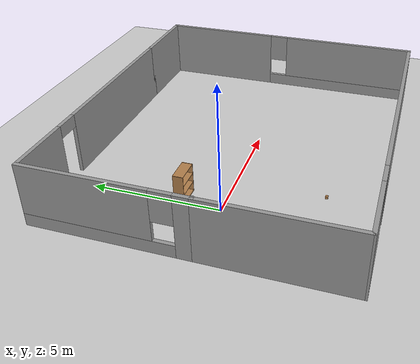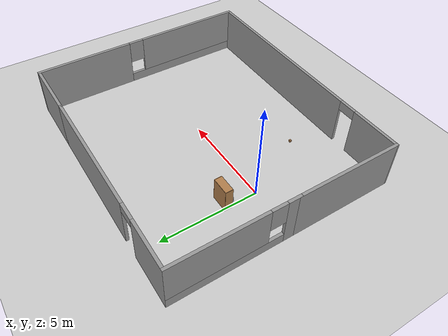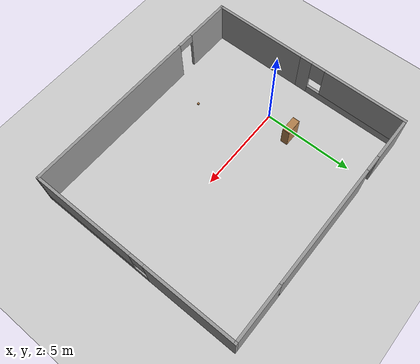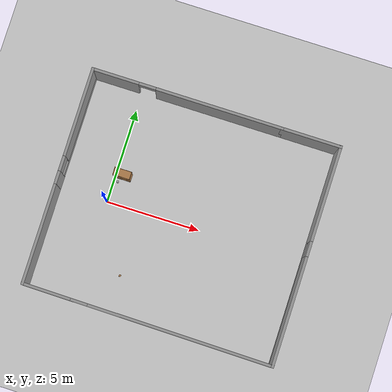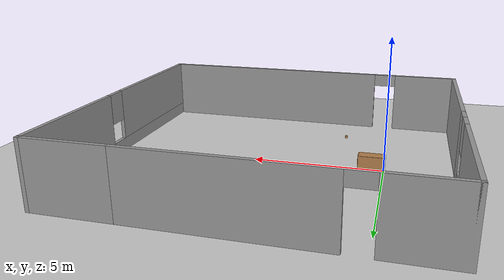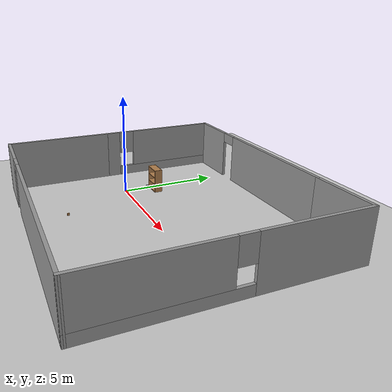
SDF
<sdf version="1.7">
 <world name="default">
  <model name="ground_plane">
   <static>1</static>
   <link name="link">
    <collision name="collision">
     <geometry><plane><normal>0 0 1</normal><size>100 100</size></plane></geometry>
     <surface>
      <contact><collide_bitmask>65535</collide_bitmask></contact>
      <friction><ode><mu>100</mu><mu2>50</mu2></ode></friction>
     </surface>
    </collision>
    <visual name="visual">
     <cast_shadows>0</cast_shadows>
     <geometry><plane><normal>0 0 1</normal><size>100 100</size></plane></geometry>
     <material>
      <script><uri>file://media/materials/scripts/gazebo.material</uri><name>Gazebo/Grey</name></script>
     </material>
    </visual>
   </link>
  </model>
  <model name="bookshelf">
   <static>1</static>
   <link name="link">
    <inertial><mass>1</mass></inertial>
    <collision name="back">
     <pose>0 0.005 0.6 0 -0 0</pose>
     <geometry><box><size>0.9 0.01 1.2</size></box></geometry>
    </collision>
    <visual name="visual1">
     <pose>0 0.005 0.6 0 -0 0</pose>
     <geometry><box><size>0.9 0.01 1.2</size></box></geometry>
     <material>
      <script><uri>file://media/materials/scripts/gazebo.material</uri><name>Gazebo/Wood</name></script>
     </material>
    </visual>
    <collision name="left_side">
     <pose>0.45 -0.195 0.6 0 -0 0</pose>
     <geometry><box><size>0.02 0.4 1.2</size></box></geometry>
    </collision>
    <visual name="visual2">
     <pose>0.45 -0.195 0.6 0 -0 0</pose>
     <geometry><box><size>0.02 0.4 1.2</size></box></geometry>
     <material>
      <script><uri>file://media/materials/scripts/gazebo.material</uri><name>Gazebo/Wood</name></script>
     </material>
    </visual>
    <collision name="right_side">
     <pose>-0.45 -0.195 0.6 0 -0 0</pose>
     <geometry><box><size>0.02 0.4 1.2</size></box></geometry>
    </collision>
    <visual name="visual3">
     <pose>-0.45 -0.195 0.6 0 -0 0</pose>
     <geometry><box><size>0.02 0.4 1.2</size></box></geometry>
     <material>
      <script><uri>file://media/materials/scripts/gazebo.material</uri><name>Gazebo/Wood</name></script>
     </material>
    </visual>
    <collision name="bottom">
     <pose>0 -0.195 0.03 0 -0 0</pose>
     <geometry><box><size>0.88 0.4 0.06</size></box></geometry>
    </collision>
    <visual name="visual4">
     <pose>0 -0.195 0.03 0 -0 0</pose>
     <geometry><box><size>0.88 0.4 0.06</size></box></geometry>
     <material>
      <script><uri>file://media/materials/scripts/gazebo.material</uri><name>Gazebo/Wood</name></script>
     </material>
    </visual>
    <collision name="top">
     <pose>0 -0.195 1.19 0 -0 0</pose>
     <geometry><box><size>0.88 0.4 0.02</size></box></geometry>
    </collision>
    <visual name="visual5">
     <pose>0 -0.195 1.19 0 -0 0</pose>
     <geometry><box><size>0.88 0.4 0.02</size></box></geometry>
     <material>
      <script><uri>file://media/materials/scripts/gazebo.material</uri><name>Gazebo/Wood</name></script>
     </material>
    </visual>
    <collision name="low_shelf">
     <pose>0 -0.195 0.43 0 -0 0</pose>
     <geometry><box><size>0.88 0.4 0.02</size></box></geometry>
    </collision>
    <visual name="visual6">
     <pose>0 -0.195 0.43 0 -0 0</pose>
     <geometry><box><size>0.88 0.4 0.02</size></box></geometry>
     <material>
      <script><uri>file://media/materials/scripts/gazebo.material</uri><name>Gazebo/Wood</name></script>
     </material>
    </visual>
    <collision name="high_shelf">
     <pose>0 -0.195 0.8 0 -0 0</pose>
     <geometry><box><size>0.88 0.4 0.02</size></box></geometry>
    </collision>
    <visual name="visual7">
     <pose>0 -0.195 0.8 0 -0 0</pose>
     <geometry><box><size>0.88 0.4 0.02</size></box></geometry>
     <material>
      <script><uri>file://media/materials/scripts/gazebo.material</uri><name>Gazebo/Wood</name></script>
     </material>
    </visual>
   </link>
   <pose>0.372739 1.74224 0 0 -0 0</pose>
  </model>
  <model name="beer">
   <link name="link">
    <pose>0 0 0.115 0 -0 0</pose>
    <inertial>
     <mass>0.39</mass>
     <inertia><ixx>0.00058</ixx><ixy>0</ixy><ixz>0</ixz><iyy>0.00058</iyy><iyz>0</iyz><izz>0.00019</izz></inertia>
    </inertial>
    <collision name="collision">
     <geometry><cylinder><radius>0.055</radius><length>0.23</length></cylinder></geometry>
    </collision>
    <visual name="visual">
     <geometry><cylinder><radius>0.055</radius><length>0.23</length></cylinder></geometry>
     <material>
      <script>
       <uri>model://beer/materials/scripts</uri>
       <uri>model://beer/materials/textures</uri>
       <name>Beer/Diffuse</name>
      </script>
     </material>
    </visual>
   </link>
   <pose>0.204899 1.15548 -2e-06 1e-06 -0 4e-06</pose>
  </model>
  <model name="test">
   <pose>4.00838 0.2487 0 0 -0 0</pose>
   <link name="Wall_0">
    <collision name="Wall_0_Collision">
     <geometry><box><size>5.5 0.15 2.5</size></box></geometry>
     <pose>0 0 1.25 0 -0 0</pose>
    </collision>
    <visual name="Wall_0_Visual">
     <pose>0 0 1.25 0 -0 0</pose>
     <geometry><box><size>5.5 0.15 2.5</size></box></geometry>
     <material>
      <script><uri>file://media/materials/scripts/gazebo.material</uri><name>Gazebo/Grey</name></script>
      <ambient>1 1 1 1</ambient>
     </material>
     <meta><layer>0</layer></meta>
    </visual>
    <pose>-6.6 -2.97458 0 0 -0 1.5708</pose>
   </link>
   <link name="Wall_1">
    <pose>-6.6 2.75042 0 0 -0 1.5708</pose>
    <visual name="Wall_1_Visual_0">
     <pose>-2.77723 0 1.25 0 -0 0</pose>
     <geometry><box><size>0.695548 0.15 2.5</size></box></geometry>
     <material>
      <script><uri>file://media/materials/scripts/gazebo.material</uri><name>Gazebo/Grey</name></script>
      <ambient>1 1 1 1</ambient>
     </material>
     <meta><layer>0</layer></meta>
    </visual>
    <collision name="Wall_1_Collision_0">
     <geometry><box><size>0.695548 0.15 2.5</size></box></geometry>
     <pose>-2.77723 0 1.25 0 -0 0</pose>
    </collision>
    <visual name="Wall_1_Visual_1">
     <pose>0.347774 0 0.25 0 -0 0</pose>
     <geometry><box><size>5.55445 0.15 0.5</size></box></geometry>
     <material>
      <script><uri>file://media/materials/scripts/gazebo.material</uri><name>Gazebo/Grey</name></script>
      <ambient>1 1 1 1</ambient>
     </material>
     <meta><layer>0</layer></meta>
    </visual>
    <collision name="Wall_1_Collision_1">
     <geometry><box><size>5.55445 0.15 0.5</size></box></geometry>
     <pose>0.347774 0 0.25 0 -0 0</pose>
    </collision>
    <visual name="Wall_1_Visual_2">
     <pose>0.747774 0 1.5 0 -0 0</pose>
     <geometry><box><size>4.75445 0.15 2</size></box></geometry>
     <material>
      <script><uri>file://media/materials/scripts/gazebo.material</uri><name>Gazebo/Grey</name></script>
      <ambient>1 1 1 1</ambient>
     </material>
     <meta><layer>0</layer></meta>
    </visual>
    <collision name="Wall_1_Collision_2">
     <geometry><box><size>4.75445 0.15 2</size></box></geometry>
     <pose>0.747774 0 1.5 0 -0 0</pose>
    </collision>
    <visual name="Wall_1_Visual_3">
     <pose>-2.02945 0 1.9 0 -0 0</pose>
     <geometry><box><size>0.8 0.15 1.2</size></box></geometry>
     <material>
      <script><uri>file://media/materials/scripts/gazebo.material</uri><name>Gazebo/Grey</name></script>
      <ambient>1 1 1 1</ambient>
     </material>
     <meta><layer>0</layer></meta>
    </visual>
    <collision name="Wall_1_Collision_3">
     <geometry><box><size>0.8 0.15 1.2</size></box></geometry>
     <pose>-2.02945 0 1.9 0 -0 0</pose>
    </collision>
   </link>
   <link name="Wall_2">
    <pose>-1.55 5.80042 0 0 -0 0</pose>
    <visual name="Wall_2_Visual_0">
     <pose>-3.85337 0 1.25 0 -0 0</pose>
     <geometry><box><size>2.54327 0.15 2.5</size></box></geometry>
     <material>
      <script><uri>file://media/materials/scripts/gazebo.material</uri><name>Gazebo/Grey</name></script>
      <ambient>1 1 1 1</ambient>
     </material>
     <meta><layer>0</layer></meta>
    </visual>
    <collision name="Wall_2_Collision_0">
     <geometry><box><size>2.54327 0.15 2.5</size></box></geometry>
     <pose>-3.85337 0 1.25 0 -0 0</pose>
    </collision>
    <visual name="Wall_2_Visual_1">
     <pose>1.72163 0 1.25 0 -0 0</pose>
     <geometry><box><size>6.80673 0.15 2.5</size></box></geometry>
     <material>
      <script><uri>file://media/materials/scripts/gazebo.material</uri><name>Gazebo/Grey</name></script>
      <ambient>1 1 1 1</ambient>
     </material>
     <meta><layer>0</layer></meta>
    </visual>
    <collision name="Wall_2_Collision_1">
     <geometry><box><size>6.80673 0.15 2.5</size></box></geometry>
     <pose>1.72163 0 1.25 0 -0 0</pose>
    </collision>
    <visual name="Wall_2_Visual_2">
     <pose>-2.13173 0 2.25 0 -0 0</pose>
     <geometry><box><size>0.9 0.15 0.5</size></box></geometry>
     <material>
      <script><uri>file://media/materials/scripts/gazebo.material</uri><name>Gazebo/Grey</name></script>
      <ambient>1 1 1 1</ambient>
     </material>
     <meta><layer>0</layer></meta>
    </visual>
    <collision name="Wall_2_Collision_2">
     <geometry><box><size>0.9 0.15 0.5</size></box></geometry>
     <pose>-2.13173 0 2.25 0 -0 0</pose>
    </collision>
   </link>
   <link name="Wall_3">
    <collision name="Wall_3_Collision">
     <geometry><box><size>3.25 0.15 2.5</size></box></geometry>
     <pose>0 0 1.25 0 -0 0</pose>
    </collision>
    <visual name="Wall_3_Visual">
     <pose>0 0 1.25 0 -0 0</pose>
     <geometry><box><size>3.25 0.15 2.5</size></box></geometry>
     <material>
      <script><uri>file://media/materials/scripts/gazebo.material</uri><name>Gazebo/Grey</name></script>
      <ambient>1 1 1 1</ambient>
     </material>
     <meta><layer>0</layer></meta>
    </visual>
    <pose>5.05 5.80042 0 0 -0 0</pose>
   </link>
   <link name="Wall_4">
    <pose>6.6 0.000423 0 0 -0 -1.5708</pose>
    <visual name="Wall_4_Visual_0">
     <pose>-3.32188 0 1.25 0 -0 0</pose>
     <geometry><box><size>5.10624 0.15 2.5</size></box></geometry>
     <material>
      <script><uri>file://media/materials/scripts/gazebo.material</uri><name>Gazebo/Grey</name></script>
      <ambient>1 1 1 1</ambient>
     </material>
     <meta><layer>0</layer></meta>
    </visual>
    <collision name="Wall_4_Collision_0">
     <geometry><box><size>5.10624 0.15 2.5</size></box></geometry>
     <pose>-3.32188 0 1.25 0 -0 0</pose>
    </collision>
    <visual name="Wall_4_Visual_1">
     <pose>2.55312 0 0.25 0 -0 0</pose>
     <geometry><box><size>6.64376 0.15 0.5</size></box></geometry>
     <material>
      <script><uri>file://media/materials/scripts/gazebo.material</uri><name>Gazebo/Grey</name></script>
      <ambient>1 1 1 1</ambient>
     </material>
     <meta><layer>0</layer></meta>
    </visual>
    <collision name="Wall_4_Collision_1">
     <geometry><box><size>6.64376 0.15 0.5</size></box></geometry>
     <pose>2.55312 0 0.25 0 -0 0</pose>
    </collision>
    <visual name="Wall_4_Visual_2">
     <pose>2.95312 0 1.5 0 -0 0</pose>
     <geometry><box><size>5.84376 0.15 2</size></box></geometry>
     <material>
      <script><uri>file://media/materials/scripts/gazebo.material</uri><name>Gazebo/Grey</name></script>
      <ambient>1 1 1 1</ambient>
     </material>
     <meta><layer>0</layer></meta>
    </visual>
    <collision name="Wall_4_Collision_2">
     <geometry><box><size>5.84376 0.15 2</size></box></geometry>
     <pose>2.95312 0 1.5 0 -0 0</pose>
    </collision>
    <visual name="Wall_4_Visual_3">
     <pose>-0.36876 0 1.9 0 -0 0</pose>
     <geometry><box><size>0.8 0.15 1.2</size></box></geometry>
     <material>
      <script><uri>file://media/materials/scripts/gazebo.material</uri><name>Gazebo/Grey</name></script>
      <ambient>1 1 1 1</ambient>
     </material>
     <meta><layer>0</layer></meta>
    </visual>
    <collision name="Wall_4_Collision_3">
     <geometry><box><size>0.8 0.15 1.2</size></box></geometry>
     <pose>-0.36876 0 1.9 0 -0 0</pose>
    </collision>
   </link>
   <link name="Wall_5">
    <pose>0 -5.72458 0 0 -0 3.13023</pose>
    <visual name="Wall_5_Visual_0">
     <pose>-1.7557 0 1.25 0 -0 0</pose>
     <geometry><box><size>9.83945 0.15 2.5</size></box></geometry>
     <material>
      <script><uri>file://media/materials/scripts/gazebo.material</uri><name>Gazebo/Grey</name></script>
      <ambient>1 1 1 1</ambient>
     </material>
     <meta><layer>0</layer></meta>
    </visual>
    <collision name="Wall_5_Collision_0">
     <geometry><box><size>9.83945 0.15 2.5</size></box></geometry>
     <pose>-1.7557 0 1.25 0 -0 0</pose>
    </collision>
    <visual name="Wall_5_Visual_1">
     <pose>5.36973 0 1.25 0 -0 0</pose>
     <geometry><box><size>2.6114 0.15 2.5</size></box></geometry>
     <material>
      <script><uri>file://media/materials/scripts/gazebo.material</uri><name>Gazebo/Grey</name></script>
      <ambient>1 1 1 1</ambient>
     </material>
     <meta><layer>0</layer></meta>
    </visual>
    <collision name="Wall_5_Collision_1">
     <geometry><box><size>2.6114 0.15 2.5</size></box></geometry>
     <pose>5.36973 0 1.25 0 -0 0</pose>
    </collision>
    <visual name="Wall_5_Visual_2">
     <pose>3.61403 0 2.25 0 -0 0</pose>
     <geometry><box><size>0.9 0.15 0.5</size></box></geometry>
     <material>
      <script><uri>file://media/materials/scripts/gazebo.material</uri><name>Gazebo/Grey</name></script>
      <ambient>1 1 1 1</ambient>
     </material>
     <meta><layer>0</layer></meta>
    </visual>
    <collision name="Wall_5_Collision_2">
     <geometry><box><size>0.9 0.15 0.5</size></box></geometry>
     <pose>3.61403 0 2.25 0 -0 0</pose>
    </collision>
   </link>
   <static>1</static>
  </model>
  <model name="wood_cube_10cm">
   <link name="link">
    <pose>0 0 0.05 0 -0 0</pose>
    <inertial>
     <mass>0.5167</mass>
     <inertia>
      <ixx>0.000861167</ixx>
      <ixy>0</ixy>
      <ixz>0</ixz>
      <iyy>0.000861167</iyy>
      <iyz>0</iyz>
      <izz>0.000861167</izz>
     </inertia>
    </inertial>
    <collision name="collision">
     <geometry><box><size>0.1 0.1 0.1</size></box></geometry>
     <surface>
      <contact>
       <poissons_ratio>0.347</poissons_ratio>
       <elastic_modulus>8.8e+09</elastic_modulus>
       <ode><kp>100000</kp><kd>100</kd><max_vel>100</max_vel><min_depth>0.001</min_depth></ode>
      </contact>
      <friction>
       <torsional>
        <coefficient>1</coefficient>
        <use_patch_radius>0</use_patch_radius>
        <surface_radius>0.01</surface_radius>
       </torsional>
      </friction>
     </surface>
    </collision>
    <visual name="visual">
     <geometry><box><size>0.1 0.1 0.1</size></box></geometry>
     <material>
      <script><uri>file://media/materials/scripts/gazebo.material</uri><name>Gazebo/Wood</name></script>
     </material>
    </visual>
   </link>
   <pose>1.82185 -3.47024 -0.001013 0 -0 0</pose>
  </model>
 </world>
</sdf>
